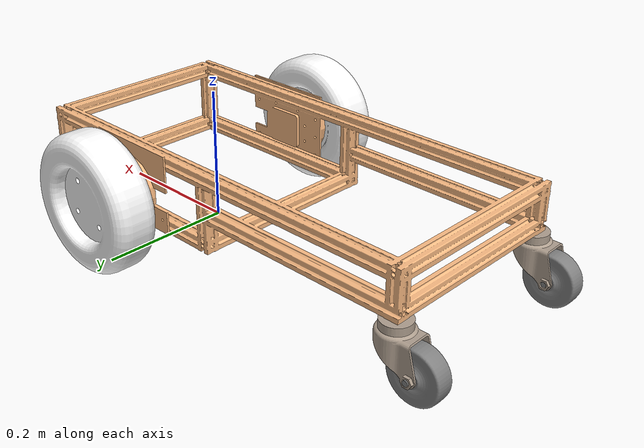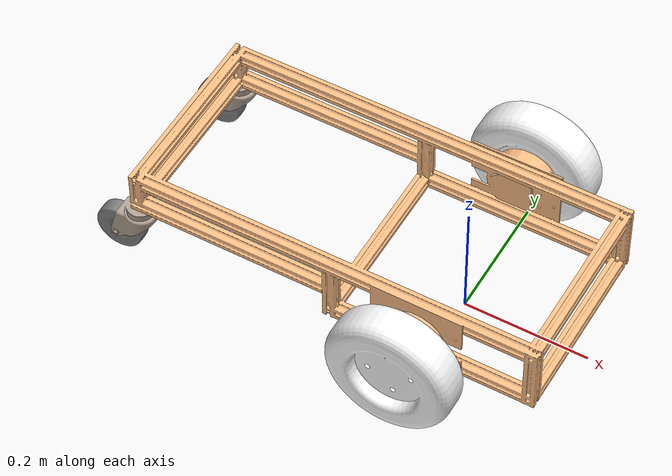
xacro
<?xml version="1.0" encoding="utf-8"?>

<robot name="mr_carter" xmlns:xacro="http://ros.org/wiki/xacro">
  <xacro:include filename="$(find robotics_arm_v7)/urdf/mr_carter.gazebo.xacro"/>

  <link
    name="base_footprint">
  </link>
  <link
    name="base_link">
    <inertial>
      <origin
        xyz="-0.074105 -4.3631E-08 0.0097349"
        rpy="0 0 0" />
      <mass
        value="5.4621" />
    <inertia
        ixx="0.0049825"
        ixy="2.9389E-17"
        ixz="-1.1192E-17"
        iyy="0.0089868"
        iyz="4.4695E-17"
        izz="0.0049825" />
    </inertial>

    <visual>
      <origin
        xyz="0 0 0"
        rpy="0 0 0" />
      <geometry>
        <mesh
          filename="package://robotics_arm_v7/meshes/new/base_link.STL" />
      </geometry>
      <material
        name="">
        <color
          rgba="0.98824 0.73725 0.51765 1" />
      </material>
    </visual>
    <collision>
      <origin
        xyz="0 0 0"
        rpy="0 0 0" />
      <geometry>
        <mesh
          filename="package://robotics_arm_v7/meshes/new/base_link.STL" />
      </geometry>
    </collision>
  </link>
  <joint
    name="base_joint"
    type="fixed">
    <origin
      xyz="0 0 0.1"
      rpy="0 0 0" />
    <parent
      link="base_footprint" />
    <child
      link="base_link" />
    <axis
      xyz="0 0 0" />
  </joint>
  <link
    name="left_wheel">
    <inertial>
      <origin
        xyz="-2.9346E-10 -0.0015289 7.2164E-16"
        rpy="0 0 0" />
      <mass
        value="1.6988" />
      <inertia
        ixx="0.0049825"
        ixy="2.9389E-17"
        ixz="-1.1192E-17"
        iyy="0.0089868"
        iyz="4.4695E-17"
        izz="0.0049825" />
    </inertial>
    <visual>
      <origin
        xyz="0 0 0"
        rpy="0 0 0" />
      <geometry>
        <mesh
          filename="package://robotics_arm_v7/meshes/new/left_wheel.STL" />
      </geometry>
      <material
        name="">
        <color
          rgba="1 1 1 1" />
      </material>
    </visual>
    <collision>
      <origin
        xyz="0 0 0"
        rpy="0 0 0" />
      <geometry>
        <mesh
          filename="package://robotics_arm_v7/meshes/new/left_wheel.STL" />
      </geometry>
    </collision>
  </link>
  <joint
    name="left_joint"
    type="continuous">
    <origin
      xyz="8.7574E-05 0.215 0"
      rpy="0 0 0" />
    <parent
      link="base_link" />
    <child
      link="left_wheel" />
    <axis
      xyz="0 1 0" />
  </joint>
  <link
    name="right_wheel">
    <inertial>
      <origin
        xyz="2.9346E-10 0.001529 1.0547E-15"
        rpy="0 0 0" />
      <mass
        value="1.6988" />
      <inertia
        ixx="0.0049825"
        ixy="4.1381E-17"
        ixz="-2.1476E-18"
        iyy="0.0089868"
        iyz="-2.0305E-17"
        izz="0.0049825" />
    </inertial>
    <visual>
      <origin
        xyz="0 0 0"
        rpy="0 0 0" />
      <geometry>
        <mesh
          filename="package://robotics_arm_v7/meshes/new/right_wheel.STL" />
      </geometry>
      <material
        name="">
        <color
          rgba="1 1 1 1" />
      </material>
    </visual>
    <collision>
      <origin
        xyz="0 0 0"
        rpy="0 0 0" />
      <geometry>
        <mesh
          filename="package://robotics_arm_v7/meshes/new/right_wheel.STL" />
      </geometry>
    </collision>
  </link>
  <joint
    name="right_joint"
    type="continuous">
    <origin
      xyz="-8.7574E-05 -0.215 0"
      rpy="0 0 0" />
    <parent
      link="base_link" />
    <child
      link="right_wheel" />
    <axis
      xyz="0 1 0" />
  </joint>
  <link
    name="caster_right_sup_link">
    <inertial>
      <origin
        xyz="-0.0057083 0.00018449 -0.017621"
        rpy="0 0 0" />
      <mass
        value="1.030986" />
      <inertia
        ixx="1.4804E-05"
        ixy="2.2843E-07"
        ixz="-4.3412E-06"
        iyy="1.5651E-05"
        iyz="2.7586E-07"
        izz="1.4627E-05" />
    </inertial>
    <visual>
      <origin
        xyz="0 0 0"
        rpy="0 0 0" />
      <geometry>
        <mesh
          filename="package://robotics_arm_v7/meshes/new/caster_right_sup_link.STL" />
      </geometry>
      <material
        name="">
        <color
          rgba="0.68627 0.62353 0.56078 1" />
      </material>
    </visual>
    <collision>
      <origin
        xyz="0 0 0"
        rpy="0 0 0" />
      <geometry>
        <mesh
          filename="package://robotics_arm_v7/meshes/new/caster_right_sup_link.STL" />
      </geometry>
    </collision>
  </link>
  <joint
    name="caster_right_sup_joint"
    type="continuous">
    <origin
      xyz="-0.46269 -0.14 -0.0036566"
      rpy="0 0 0" />
    <parent
      link="base_link" />
    <child
      link="caster_right_sup_link" />
    <axis
      xyz="0 0 1" />
  </joint>
  <link
    name="caster_right_wheel_link">
    <inertial>
      <origin
        xyz="3.7102E-07 -2.382E-05 -5.5511E-17"
        rpy="0 0 0" />
      <mass
        value="1.11899" />
      <inertia
        ixx="4.7812E-05"
        ixy="-5.1783E-07"
        ixz="1.1714E-20"
        iyy="8.1049E-05"
        iyz="-3.9851E-19"
        izz="4.7803E-05" />
    </inertial>
    <visual>
      <origin
        xyz="0 0 0"
        rpy="0 0 0" />
      <geometry>
        <mesh
          filename="package://robotics_arm_v7/meshes/new/caster_right_wheel_link.STL" />
      </geometry>
      <material
        name="">
        <color
          rgba="0.50196 0.50196 0.50196 1" />
      </material>
    </visual>
    <collision>
      <origin
        xyz="0 0 0"
        rpy="0 0 0" />
      <geometry>
        <mesh
          filename="package://robotics_arm_v7/meshes/new/caster_right_wheel_link.STL" />
      </geometry>
    </collision>
  </link>
  <joint
    name="caster_right_wheel_joint"
    type="continuous">
    <origin
      xyz="-0.034264 -0.00053995 -0.058235"
      rpy="0 0 0" />
    <parent
      link="caster_right_sup_link" />
    <child
      link="caster_right_wheel_link" />
    <axis
      xyz="-0.015574 0.99988 0" />
  </joint>
  <link
    name="caster_left_sup_link">
    <inertial>
      <origin
        xyz="-0.0057095 0.0001554 -0.017621"
        rpy="0 0 0" />
      <mass
        value="1.030984" />
      <inertia
        ixx="1.4801E-05"
        ixy="2.2409E-07"
        ixz="-4.3424E-06"
        iyy="1.5653E-05"
        iyz="2.5372E-07"
        izz="1.4626E-05" />
    </inertial>
    <visual>
      <origin
        xyz="0 0 0"
        rpy="0 0 0" />
      <geometry>
        <mesh
          filename="package://robotics_arm_v7/meshes/new/caster_left_sup_link.STL" />
      </geometry>
      <material
        name="">
        <color
          rgba="0.68627 0.62353 0.56078 1" />
      </material>
    </visual>
    <collision>
      <origin
        xyz="0 0 0"
        rpy="0 0 0" />
      <geometry>
        <mesh
          filename="package://robotics_arm_v7/meshes/new/caster_left_sup_link.STL" />
      </geometry>
    </collision>
  </link>
  <joint
    name="caster_left_sup_joint"
    type="continuous">
    <origin
      xyz="-0.46269 0.14 -0.0036566"
      rpy="0 0 0" />
    <parent
      link="base_link" />
    <child
      link="caster_left_sup_link" />
    <axis
      xyz="0 0 1" />
  </joint>
  <link
    name="caster_left_wheel_link">
    <inertial>
      <origin
        xyz="-4.9244E-07 2.3818E-05 6.6613E-16"
        rpy="0 0 0" />
      <mass
        value="1.11899" />
      <inertia
        ixx="4.7818E-05"
        ixy="-6.8723E-07"
        ixz="6.1491E-21"
        iyy="8.1042E-05"
        iyz="2.3118E-19"
        izz="4.7803E-05" />
    </inertial>
    <visual>
      <origin
        xyz="0 0 0"
        rpy="0 0 0" />
      <geometry>
        <mesh
          filename="package://robotics_arm_v7/meshes/new/caster_left_wheel_link.STL" />
      </geometry>
      <material
        name="">
        <color
          rgba="0.50196 0.50196 0.50196 1" />
      </material>
    </visual>
    <collision>
      <origin
        xyz="0 0 0"
        rpy="0 0 0" />
      <geometry>
        <mesh
          filename="package://robotics_arm_v7/meshes/new/caster_left_wheel_link.STL" />
      </geometry>
    </collision>
  </link>
  <joint
    name="caster_left_wheel_joint"
    type="continuous">
    <origin
      xyz="-0.034261 -0.00070211 -0.058233"
      rpy="0 0 0" />
    <parent
      link="caster_left_sup_link" />
    <child
      link="caster_left_wheel_link" />
    <axis
      xyz="0.020671 -0.99979 0" />
  </joint>

</robot>
